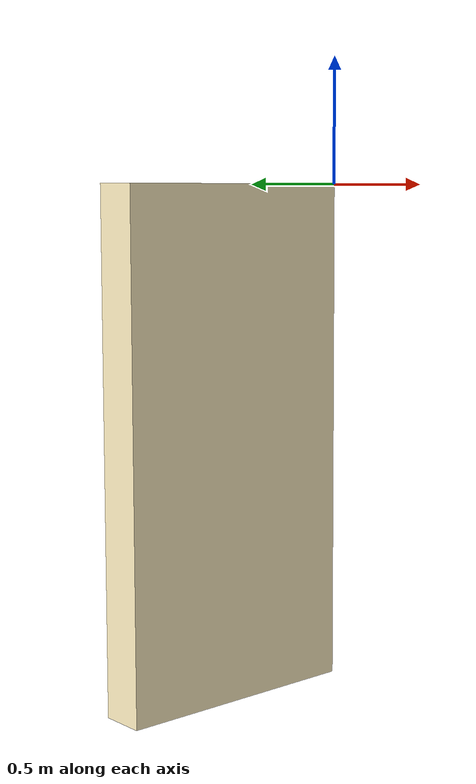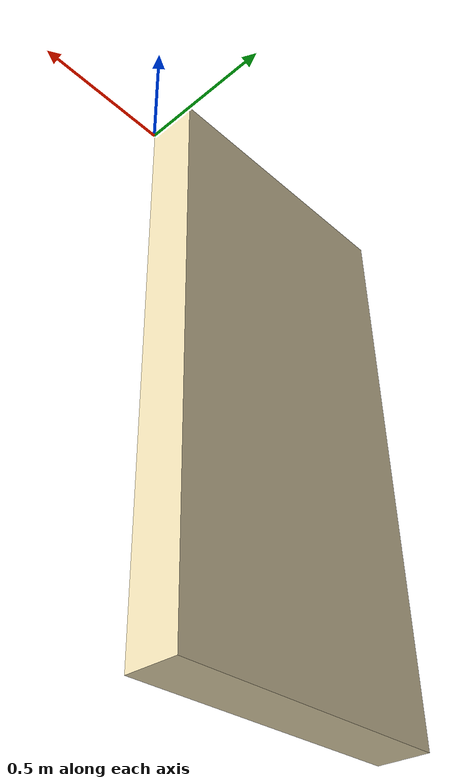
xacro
<?xml version="1.0"?>
<robot name="pallet3" xmlns:xacro="http://www.ros.org/wiki/xacro">

  <link name="pallet3_link">
    <visual>
      <geometry>
        <mesh filename="package://qm_description/meshes/pallets/Pallet18cm.stl" scale="0.001 0.001 0.001"/>
      </geometry>
      <material name="ocher">
          <color rgba="0.949 0.890 0.722 1"/>
      </material>
    </visual>
    <collision>
      <geometry>
        <mesh filename="package://qm_description/meshes/pallets/Pallet18cm.stl" scale="0.001 0.001 0.001"/>
      </geometry>
      <surface>
        <friction>
            <ode>
                <mu>0.7</mu>        <!-- Primary friction coefficient -->
                <mu2>0.7</mu2>      <!-- Secondary friction coefficient -->
            </ode>
        </friction>
      </surface>
    </collision>
    <inertial>
      <mass value="1.0"/>
      <inertia ixx="0.1" ixy="0.0" ixz="0.0" iyy="0.1" iyz="0.0" izz="0.1"/>
    </inertial>
  </link>

  <gazebo reference="pallet3_link">
    <material>Gazebo/WoodPallet</material>
  </gazebo>

  <!-- Wall fixed to the world-->
  <link name="world"/>

  <joint name="base_link_fixed" type="fixed">
    <parent link="world"/>
    <child link="pallet3_link"/>
  </joint>

</robot>
